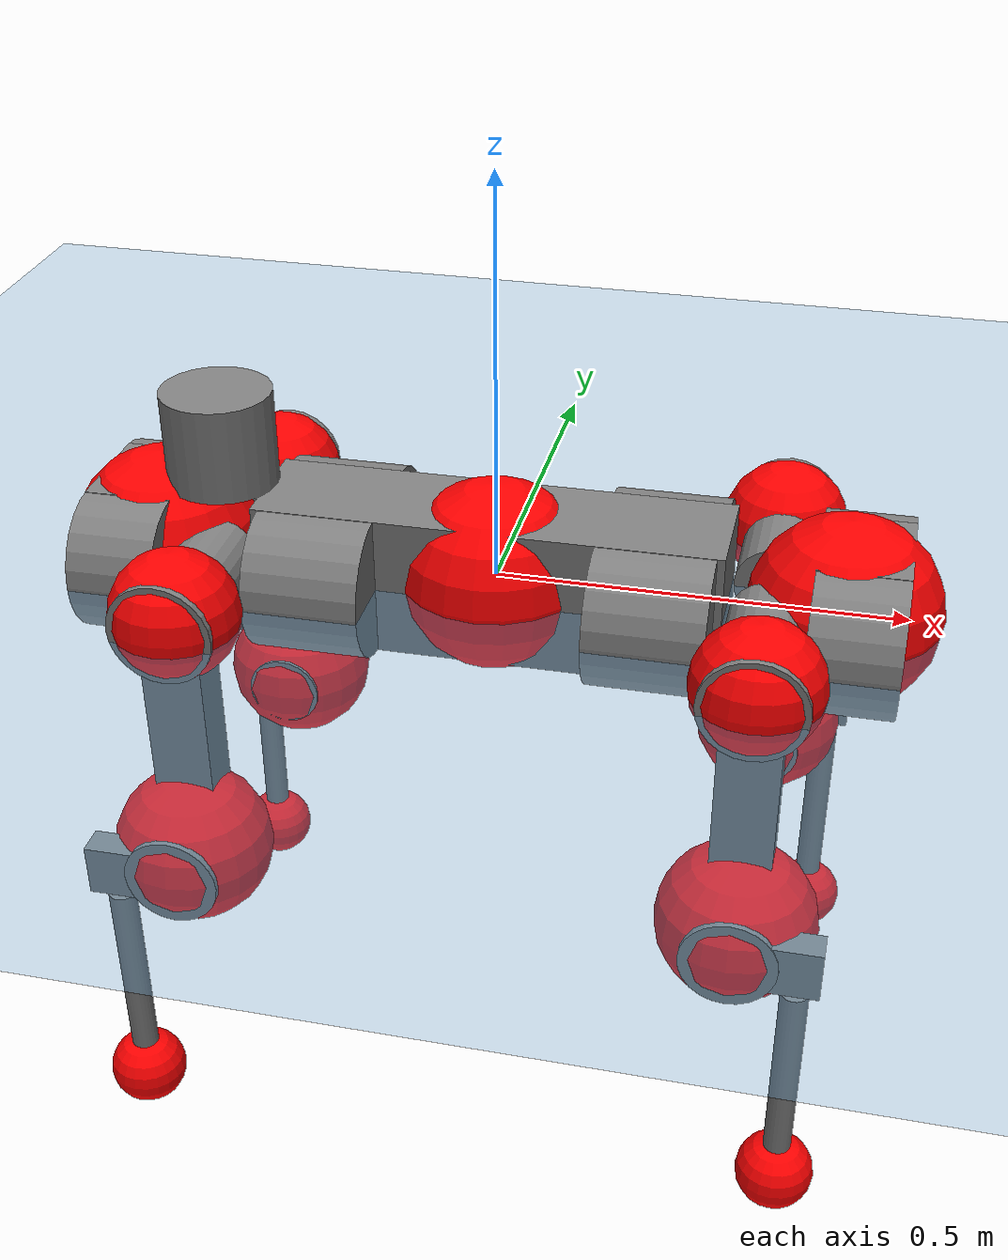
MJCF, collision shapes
<mujoco model="anymal_c">
  <compiler angle="radian" assetdir="assets" balanceinertia="true" inertiafromgeom="false"/>

  <option timestep="0.005" density="1.2" viscosity="2e-05"/>

  <size nkey="1"/>

  <visual>
    <quality shadowsize="8192"/>
    <map shadowclip="0.5"/>
  </visual>

  <default>
    <default class="/">
      <material specular="0" shininess="0.25"/>
      <geom contype="0" conaffinity="0" group="1" solref="-1000 -80"/>
      <site size="0.01 0.005 0.005" group="5"/>
      <general forcelimited="true" forcerange="-80 80" biastype="affine" gainprm="80" biasprm="0 -80 -2"/>
      <default class="anymal_c">
        <joint armature="0.01" damping="0.01" frictionloss="0.1"/>
        <default class="visual">
          <geom type="mesh" group="2"/>
          <default class="visual_zflip"/>
        </default>
        <default class="collision">
          <geom type="cylinder" group="3"/>
          <default class="foot">
            <geom size="0.03 0 0" type="sphere" condim="6" priority="1" friction="0.8 0.02 0.01" solimp="0.015 1 0.03"/>
          </default>
        </default>
      </default>
      <default class="reward_collision_sphere">
        <geom group="5" rgba="1 0 0 1"/>
      </default>
    </default>
  </default>

  <asset>
    <texture type="skybox" colorspace="auto" name="//unnamed_texture_0" builtin="gradient" rgb1="0.95 0.95 0.95" rgb2="0.95 0.95 0.95" width="100" height="600"/>
    <texture type="2d" colorspace="auto" name="texplane" builtin="checker" rgb1="0.345 0.575 0.748" rgb2="0.345 0.575 0.748" markrgb="1 1 1" width="512" height="512"/>
    <texture type="2d" colorspace="linear" name="base" file="base.png"/>
    <texture type="2d" colorspace="linear" name="top_shell" file="top_shell.png"/>
    <texture type="2d" colorspace="linear" name="bottom_shell" file="bottom_shell.png"/>
    <texture type="2d" colorspace="linear" name="remote" file="remote.png"/>
    <texture type="2d" colorspace="linear" name="hatch" file="hatch.png"/>
    <texture type="2d" colorspace="linear" name="handle" file="handle.png"/>
    <texture type="2d" colorspace="linear" name="face" file="face.png"/>
    <texture type="2d" colorspace="linear" name="battery" file="battery.png"/>
    <texture type="2d" colorspace="linear" name="lidar_cage" file="lidar_cage.png"/>
    <texture type="2d" colorspace="linear" name="depth_camera" file="depth_camera.png"/>
    <texture type="2d" colorspace="linear" name="wide_angle_camera" file="wide_angle_camera.png"/>
    <texture type="2d" colorspace="linear" name="lidar" file="lidar.png"/>
    <texture type="2d" colorspace="linear" name="drive" file="drive.png"/>
    <texture type="2d" colorspace="linear" name="hip_l" file="hip_l.png"/>
    <texture type="2d" colorspace="linear" name="shank_l" file="shank_l.png"/>
    <texture type="2d" colorspace="linear" name="foot" file="foot.png"/>
    <texture type="2d" colorspace="linear" name="thigh" file="thigh.png"/>
    <texture type="2d" colorspace="linear" name="shank_r" file="shank_r.png"/>
    <texture type="2d" colorspace="linear" name="hip_r" file="hip_r.png"/>
    <material name="MatPlane" class="/" texture="texplane" texuniform="true" texrepeat="2 2" specular="0.9" shininess="0.5"/>
    <material name="black_plastic" class="/" rgba="0.007 0.007 0.007 1"/>
    <material name="green" class="/" rgba="0.052 0.178 0.033 1"/>
    <material name="red" class="/" rgba="0.178 0.006 0.005 1"/>
    <material name="yellow" class="/" rgba="0.178 0.119 0.006 1"/>
    <material name="lwl" class="/" rgba="0.8 0.8 0.8 1"/>
    <material name="base" class="/" texture="base"/>
    <material name="top_shell" class="/" texture="top_shell"/>
    <material name="bottom_shell" class="/" texture="bottom_shell"/>
    <material name="hip_l" class="/" texture="hip_l"/>
    <material name="thigh" class="/" texture="thigh"/>
    <material name="shank_l" class="/" texture="shank_l"/>
    <material name="foot" class="/" texture="foot"/>
    <material name="hip_r" class="/" texture="hip_r"/>
    <material name="shank" class="/" texture="shank_r"/>
    <material name="hatch" class="/" texture="hatch"/>
    <material name="remote" class="/" texture="remote"/>
    <material name="handle" class="/" texture="handle"/>
    <material name="face" class="/" texture="face"/>
    <material name="depth_camera" class="/" texture="depth_camera"/>
    <material name="wide_angle_camera" class="/" texture="wide_angle_camera"/>
    <material name="battery" class="/" texture="battery"/>
    <material name="lidar_cage" class="/" texture="lidar_cage"/>
    <material name="lidar" class="/" texture="lidar"/>
    <material name="drive" class="/" texture="drive"/>
    <mesh name="base_0" class="/" file="base_0.obj"/>
    <mesh name="base_1" class="/" file="base_1.obj"/>
    <mesh name="base_2" class="/" file="base_2.obj"/>
    <mesh name="base_3" class="/" file="base_3.obj"/>
    <mesh name="base_4" class="/" file="base_4.obj"/>
    <mesh name="base_5" class="/" file="base_5.obj"/>
    <mesh name="top_shell" class="/" file="top_shell.obj"/>
    <mesh name="bottom_shell" class="/" file="bottom_shell.obj"/>
    <mesh name="remote" class="/" file="remote.obj"/>
    <mesh name="handle" class="/" file="handle.obj"/>
    <mesh name="face" class="/" file="face.obj"/>
    <mesh name="wide_angle_camera" class="/" file="wide_angle_camera.obj"/>
    <mesh name="depth_camera" class="/" file="depth_camera.obj"/>
    <mesh name="battery" class="/" file="battery.obj"/>
    <mesh name="lidar_cage" class="/" file="lidar_cage.obj"/>
    <mesh name="lidar" class="/" file="lidar.obj"/>
    <mesh name="drive" class="/" file="drive.obj"/>
    <mesh name="hip_l" class="/" file="hip_l.obj"/>
    <mesh name="thigh" class="/" file="thigh.obj"/>
    <mesh name="shank_l" class="/" file="shank_l.obj"/>
    <mesh name="foot" class="/" file="foot.obj"/>
    <mesh name="hip_r" class="/" file="hip_r.obj"/>
    <mesh name="hatch" class="/" file="hatch.obj"/>
    <mesh name="shank_r" class="/" file="shank_r.obj"/>
  </asset>

  <worldbody>
    <geom name="floor" class="/" size="100 100 0.125" type="plane" group="0" material="MatPlane"/>
    <light name="toplight_shadow" class="/" pos="0 0 5" dir="0.0990148 0.0990148 -0.990148" type="directional" ambient="0.04 0.04 0.04" diffuse="0.55 0.55 0.55" specular="0.12 0.12 0.12"/>
    <light name="toplight_fill" class="/" pos="0 0 5" dir="0.0990148 0.0990148 -0.990148" type="directional" castshadow="false" ambient="0.04 0.04 0.04" diffuse="0.3 0.3 0.3" specular="0.08 0.08 0.08"/>
    <body name="trunk" childclass="anymal_c" pos="-0.00211516 0.000459364 0.00263532" quat="0.999999 -0.000557334 -0.000898506 0.000891513">
      <inertial pos="0.00415882 -0.000455861 0.0522248" quat="0.50329 0.495642 0.495803 0.505192" mass="18.0532" diaginertia="0.471808 0.378573 0.371784"/>
      <joint name="//unnamed_joint_0" type="free" armature="0" damping="0" frictionloss="0"/>
      <geom name="//unnamed_geom_1" class="visual" material="green" mesh="base_0"/>
      <geom name="//unnamed_geom_2" class="visual" material="yellow" mesh="base_1"/>
      <geom name="//unnamed_geom_3" class="visual" material="red" mesh="base_2"/>
      <geom name="//unnamed_geom_4" class="visual" material="black_plastic" mesh="base_3"/>
      <geom name="//unnamed_geom_5" class="visual" material="lwl" mesh="base_4"/>
      <geom name="//unnamed_geom_6" class="visual" material="base" mesh="base_5"/>
      <geom name="trunk_1" class="collision" size="0.286081 0.0690541 0.0887838" type="box"/>
      <geom name="trunk_2" class="collision" size="0.0887838 0.0715203" pos="0.204971 0.0633453 0" quat="0.707107 0 0.707107 0"/>
      <geom name="trunk_3" class="collision" size="0.0887838 0.0715203" pos="-0.204971 0.0633453 0" quat="0.707107 0 0.707107 0"/>
      <geom name="trunk_4" class="collision" size="0.0887838 0.0715203" pos="0.204971 -0.0633453 0" quat="0.707107 0 0.707107 0"/>
      <geom name="trunk_5" class="collision" size="0.0887838 0.0715203" pos="-0.204971 -0.0633453 0" quat="0.707107 0 0.707107 0"/>
      <geom name="//unnamed_geom_12" class="visual" material="top_shell" mesh="top_shell"/>
      <geom name="//unnamed_geom_13" class="visual" material="bottom_shell" mesh="bottom_shell"/>
      <geom name="//unnamed_geom_14" class="visual" material="remote" mesh="remote"/>
      <geom name="//unnamed_geom_15" class="visual" material="handle" mesh="handle"/>
      <geom name="//unnamed_geom_16" class="visual" pos="0.390623 0 0" quat="1 0 0 0" material="face" mesh="face"/>
      <geom name="trunk_6" class="collision" size="0.0542568 0.0690541 0.0887838" pos="0.442454 0 0" type="box"/>
      <geom name="//unnamed_geom_18" class="collision" size="0.0887838 0.0542568" pos="0.442454 0.0633453 0" quat="0.707107 0 0.707107 0"/>
      <geom name="//unnamed_geom_19" class="collision" size="0.0887838 0.0542568" pos="0.442454 -0.0633453 0" quat="0.707107 0 0.707107 0"/>
      <geom name="//unnamed_geom_20" class="visual" pos="0.435064 0 -0.0337642" quat="0.965926 0 0.258819 0" material="depth_camera" mesh="depth_camera"/>
      <geom name="//unnamed_geom_21" class="visual" pos="0.483449 0 0.0166486" material="wide_angle_camera" mesh="wide_angle_camera"/>
      <geom name="//unnamed_geom_22" class="visual_zflip" pos="-0.390623 0 0" quat="0 0 0 1" material="face" mesh="face"/>
      <geom name="trunk_7" class="collision" size="0.0542568 0.0690541 0.0887838" pos="-0.442454 0 0" quat="0 0 0 1" type="box"/>
      <geom name="//unnamed_geom_24" class="collision" size="0.0887838 0.0542568" pos="-0.442454 -0.0633453 0" quat="0 -0.707107 0 0.707107"/>
      <geom name="//unnamed_geom_25" class="collision" size="0.0887838 0.0542568" pos="-0.442454 0.0633453 0" quat="0 -0.707107 0 0.707107"/>
      <geom name="//unnamed_geom_26" class="visual" pos="-0.435064 0 -0.0337642" quat="0 -0.258819 0 0.965926" material="depth_camera" mesh="depth_camera"/>
      <geom name="//unnamed_geom_27" class="visual_zflip" pos="-0.483449 0 0.0166486" quat="0 0 0 1" material="wide_angle_camera" mesh="wide_angle_camera"/>
      <geom name="//unnamed_geom_28" class="visual" material="battery" mesh="battery"/>
      <geom name="//unnamed_geom_29" class="visual" pos="0 0.0687066 0.0310174" quat="0.683013 -0.183013 0.183013 0.683013" material="depth_camera" mesh="depth_camera"/>
      <geom name="//unnamed_geom_30" class="visual" pos="0 -0.0687066 0.0310174" quat="0.683013 0.183013 0.183013 -0.683013" material="depth_camera" mesh="depth_camera"/>
      <geom name="//unnamed_geom_31" class="visual" pos="-0.343032 0 0.0817417" quat="1 0 0 0" material="lidar_cage" mesh="lidar_cage"/>
      <geom name="trunk_8" class="collision" size="0.0690541 0.0591892" pos="-0.343032 0 0.14847"/>
      <geom name="//unnamed_geom_33" class="visual" pos="-0.343032 -1.47178e-05 0.158145" quat="0.707107 0 0 -0.707107" material="lidar" mesh="lidar"/>
      <geom name="//unnamed_geom_34" class="visual" pos="0.282624 0.0941866 -3.5742e-09" quat="0.258819 0.965926 0 0" material="drive" mesh="drive"/>
      <geom name="//unnamed_geom_35" class="visual" pos="0.282624 -0.0941866 3.5742e-09" quat="0.258819 -0.965926 0 0" material="drive" mesh="drive"/>
      <geom name="//unnamed_geom_36" class="visual" pos="-0.282624 0.0941866 3.5742e-09" quat="0 0 0.965926 -0.258819" material="drive" mesh="drive"/>
      <geom name="//unnamed_geom_37" class="visual" pos="-0.282624 -0.0941866 -3.5742e-09" quat="0 0 -0.965926 -0.258819" material="drive" mesh="drive"/>
      <geom name="//unnamed_geom_38" class="visual" pos="0.109318 0 0.0811856" quat="1 0 0 0" material="hatch" mesh="hatch"/>
      <geom name="//unnamed_geom_39" class="reward_collision_sphere" size="0.118378"/>
      <geom name="//unnamed_geom_40" class="reward_collision_sphere" size="0.118378" pos="0.424078 0 0"/>
      <geom name="//unnamed_geom_41" class="reward_collision_sphere" size="0.118378" pos="-0.424078 0 0"/>
      <site name="imu" pos="0.232897 0.00900889 0.0528358" size="0.00986486"/>
      <camera name="track" pos="0 -1.80987 0" quat="0.707107 0.707107 0 0" mode="trackcom"/>
      <camera name="ego_camera" pos="0.424078 0 -0.0444853" quat="-0.5 -0.5 0.5 0.5"/>
      <body name="LF_HIP" pos="0.281387 0.0927821 -0.00129532" quat="0.258736 0.965948 0.000265575 5.34117e-05">
        <inertial pos="0.0536148 -0.0152028 -0.00871837" quat="-0.127213 0.709175 -0.135625 0.680069" mass="2.82171" diaginertia="0.00441246 0.00301145 0.00575938"/>
        <joint name="LF_HAA" pos="0 0 0" axis="0.999999 0.000635638 -0.000914521" range="-0.715745 0.544405" armature="0.00940738" damping="0.0217327" frictionloss="0.0882807"/>
        <geom name="//unnamed_geom_42" class="visual" pos="0 -0.000210254 3.4534e-05" quat="0.258819 -0.965926 0 0" material="hip_l" mesh="hip_l"/>
        <geom name="//unnamed_geom_43" class="visual" pos="0.0564495 -0.0679809 -0.0407813" quat="0.183013 -0.683013 0.683013 0.183013" material="drive" mesh="drive"/>
        <geom name="//unnamed_geom_44" class="collision" size="0.0493243 0.0690541" pos="0.0564495 -0.0108228 -0.00767927" quat="-0.353553 -0.612372 0.612372 -0.353553"/>
        <body name="LF_THIGH" pos="0.054148 -0.0660578 -0.0450305" quat="0.183079 -0.683036 0.682967 0.183033">
          <inertial pos="0.0284003 0.00022177 -0.27061" quat="0.99347 -0.0097733 -0.0814857 0.0792543" mass="2.8873" diaginertia="0.0224827 0.0184911 0.00735906"/>
          <joint name="LF_HFE" pos="0 0 0" axis="0.999982 -0.00156047 0.00579257" stiffness="0.00194404" range="-3.13271 3.18188" armature="0.00880628" damping="0.0142883" frictionloss="0.0861625"/>
          <geom name="//unnamed_geom_45" class="visual" pos="0.000745346 1.17449e-06 0" quat="0.707107 0 0 -0.707107" material="thigh" mesh="thigh"/>
          <geom name="//unnamed_geom_46" class="collision" size="0.0641216 0.0394595" pos="0.0376958 0 0" quat="0.5 0.5 -0.5 -0.5"/>
          <geom name="//unnamed_geom_47" class="collision" size="0.0369932 0.0295946 0.139404" pos="0.0282718 0 -0.15716" quat="0.707107 0 0 -0.707107" type="box"/>
          <geom name="//unnamed_geom_48" class="visual" pos="0.0945222 0 -0.316958" quat="1 0 0 0" material="drive" mesh="drive"/>
          <geom name="//unnamed_geom_49" class="collision" size="0.0493243 0.0690541" pos="0.0285546 0 -0.316958" quat="0.707107 0 0.707107 0"/>
          <geom name="//unnamed_geom_50" class="reward_collision_sphere" size="0.0789189" pos="0.0235599 0 0"/>
          <body name="LF_SHANK" pos="0.0932961 0.000470665 -0.315838" quat="0.999999 0.00102398 6.3917e-05 0.000103085">
            <inertial pos="0.00529479 -0.0536783 -0.092469" quat="0.993232 -0.112748 -0.0027377 -0.0277776" mass="0.555449" diaginertia="0.0073592 0.00551543 0.00191358"/>
            <joint name="LF_KFE" pos="0 0 0" axis="0.999997 -0.00215373 0.00101482" range="-3.09668 3.12927" armature="0.0110714" damping="0.00801208" frictionloss="0.0949866"/>
            <geom name="//unnamed_geom_51" class="visual" pos="0.000243041 0.00129591 0" quat="0.707107 0 0 -0.707107" material="shank_l" mesh="shank_l"/>
            <geom name="LF_kfe_act" class="collision" size="0.0591892 0.0197297" pos="0.0188479 0 0" quat="0.5 0.5 -0.5 -0.5"/>
            <geom name="//unnamed_geom_53" class="collision" size="0.056722 0.0332939 0.0187432" pos="0.0188479 -0.0520327 0" quat="0.5 0.5 -0.5 -0.5" type="box"/>
            <geom name="//unnamed_geom_54" class="visual" pos="0.0122982 -0.0791712 -0.375867" quat="0.382683 0 0 -0.92388" material="foot" mesh="foot"/>
            <geom name="LF_calf" class="collision" size="0.0172635 0.139343" pos="0.0122983 -0.0795889 -0.187934" quat="0.707107 0 0 -0.707107"/>
            <geom name="LF_foot" class="foot" size="0.0297754" pos="0.0122983 -0.0795889 -0.350844" quat="0.707107 0 0 -0.707107"/>
            <geom name="//unnamed_geom_57" class="reward_collision_sphere" size="0.0986486" pos="-0.0471197 0 0"/>
            <geom name="//unnamed_geom_58" class="reward_collision_sphere" size="0.0493243" pos="0.0122983 -0.0795889 -0.350844"/>
            <site name="LF_foot" class="foot" pos="0.0122983 -0.0795889 -0.350844" quat="0.707107 0 0 -0.707107" size="0.00986486"/>
          </body>
        </body>
      </body>
      <body name="RF_HIP" pos="0.283298 -0.0944118 -0.00197863" quat="0.25881 -0.965928 0.000237975 -0.000124072">
        <inertial pos="0.0512119 0.0159365 -0.0114221" quat="0.140613 0.677166 0.126897 0.711035" mass="2.71879" diaginertia="0.00434383 0.00301687 0.00556007"/>
        <joint name="RF_HAA" pos="0 0 0" axis="0.999988 0.00468468 -0.00123177" range="-0.476183 0.711657" armature="0.00968845" damping="0.00343309" frictionloss="0.111913"/>
        <geom name="//unnamed_geom_59" class="visual" pos="0 0.000210252 3.4534e-05" quat="0.258819 0.965926 0 0" material="hip_r" mesh="hip_r"/>
        <geom name="//unnamed_geom_60" class="visual" pos="0.0564495 0.0679809 -0.0407813" quat="0.183013 0.683013 0.683013 -0.183013" material="drive" mesh="drive"/>
        <geom name="//unnamed_geom_61" class="collision" size="0.0493243 0.0690541" pos="0.0564495 0.0108228 -0.00767927" quat="-0.353553 0.612372 0.612372 0.353553"/>
        <body name="RF_THIGH" pos="0.0592395 0.0630998 -0.0471499" quat="0.182997 0.683094 0.682881 -0.183219">
          <inertial pos="0.0286733 -0.00255852 -0.27565" quat="0.992648 0.00388077 -0.0750599 0.094872" mass="2.94437" diaginertia="0.0214677 0.0176298 0.00696456"/>
          <joint name="RF_HFE" pos="0 0 0" axis="1 0.000601013 0.00014623" range="-3.09136 3.11375" armature="0.00888616" damping="0.0103499" frictionloss="0.112296"/>
          <geom name="//unnamed_geom_62" class="visual" pos="0.000745346 1.17449e-06 0" quat="0.707107 0 0 -0.707107" material="thigh" mesh="thigh"/>
          <geom name="//unnamed_geom_63" class="collision" size="0.0641216 0.0394595" pos="0.0376958 0 0" quat="0.5 0.5 0.5 0.5"/>
          <geom name="//unnamed_geom_64" class="collision" size="0.0369932 0.0295946 0.139404" pos="0.0282718 0 -0.15716" quat="0.707107 0 0 0.707107" type="box"/>
          <geom name="//unnamed_geom_65" class="visual" pos="0.0945222 0 -0.316958" quat="1 0 0 0" material="drive" mesh="drive"/>
          <geom name="//unnamed_geom_66" class="collision" size="0.0493243 0.0690541" pos="0.0285546 0 -0.316958" quat="0.707107 0 0.707107 0"/>
          <geom name="//unnamed_geom_67" class="reward_collision_sphere" size="0.0789189" pos="0.0235599 0 0"/>
          <body name="RF_SHANK" pos="0.0916372 0.00023145 -0.317849" quat="0.999999 -0.000343657 -0.000937446 -0.000778548">
            <inertial pos="0.00380334 0.0554599 -0.0897471" quat="0.992854 0.117535 5.41627e-05 0.0206604" mass="0.59196" diaginertia="0.00794407 0.00550199 0.00193695"/>
            <joint name="RF_KFE" pos="0 0 0" axis="0.999942 0.003337 0.0102526" stiffness="0.00140977" range="-3.12985 3.08952" armature="0.0105222" damping="0.00556406" frictionloss="0.112298"/>
            <geom name="//unnamed_geom_68" class="visual" pos="0.00024304 -0.0012959 0" quat="0.707107 0 0 0.707107" material="shank" mesh="shank_r"/>
            <geom name="RF_kfe_act" class="collision" size="0.0591892 0.0197297" pos="0.0188479 0 0" quat="0.5 0.5 0.5 0.5"/>
            <geom name="//unnamed_geom_70" class="collision" size="0.056722 0.0332939 0.0187432" pos="0.0188479 0.0520327 0" quat="0.5 0.5 0.5 0.5" type="box"/>
            <geom name="//unnamed_geom_71" class="visual" pos="0.0122983 0.0791712 -0.375867" quat="0.382683 0 0 0.92388" material="foot" mesh="foot"/>
            <geom name="RF_calf" class="collision" size="0.0172635 0.139343" pos="0.0122983 0.0795889 -0.187934" quat="0.707107 0 0 0.707107"/>
            <geom name="RF_foot" class="foot" size="0.0280741" pos="0.0122983 0.0795889 -0.350844" quat="0.707107 0 0 0.707107"/>
            <geom name="//unnamed_geom_74" class="reward_collision_sphere" size="0.0986486" pos="-0.0471197 0 0"/>
            <geom name="//unnamed_geom_75" class="reward_collision_sphere" size="0.0493243" pos="0.0122983 0.0795889 -0.350844"/>
            <site name="RF_foot" class="foot" pos="0.0122983 0.0795889 -0.350844" quat="0.707107 0 0 0.707107" size="0.00986486"/>
          </body>
        </body>
      </body>
      <body name="LH_HIP" pos="-0.282089 0.0926965 -0.000393136" quat="-0.000661608 0.000175816 0.965883 -0.25898">
        <inertial pos="0.0536997 0.0156941 -0.00840733" quat="0.140358 0.677473 0.125447 0.71105" mass="2.65838" diaginertia="0.00421165 0.00289889 0.00537408"/>
        <joint name="LH_HAA" pos="0 0 0" axis="0.999981 0.000254175 0.00608961" range="-0.476969 0.777065" armature="0.00989596" damping="0.00952537" frictionloss="0.100037"/>
        <geom name="//unnamed_geom_76" class="visual" pos="0 0.000210252 3.4534e-05" quat="-0.258819 -0.965926 0 0" material="hip_r" mesh="hip_r"/>
        <geom name="//unnamed_geom_77" class="visual" pos="0.0564495 0.0679809 -0.0407813" quat="0.183013 0.683013 0.683013 -0.183013" material="drive" mesh="drive"/>
        <geom name="//unnamed_geom_78" class="collision" size="0.0493243 0.0690541" pos="0.0564495 0.0108228 -0.00767927" quat="-0.353553 0.612372 0.612372 0.353553"/>
        <body name="LH_THIGH" pos="0.0564099 0.0638876 -0.0440987" quat="0.182993 0.682964 0.682789 -0.184045">
          <inertial pos="0.0308617 0.00246151 -0.272332" quat="0.993088 -0.00474946 -0.0786363 0.0870056" mass="2.7785" diaginertia="0.0223304 0.0181326 0.00718457"/>
          <joint name="LH_HFE" pos="0 0 0" axis="0.999998 0.00123433 -0.0013456" range="-3.19559 3.09692" armature="0.0105778" damping="0" frictionloss="0.0965604"/>
          <geom name="//unnamed_geom_79" class="visual" pos="0.000745346 1.17449e-06 0" quat="0.707107 0 0 -0.707107" material="thigh" mesh="thigh"/>
          <geom name="//unnamed_geom_80" class="collision" size="0.0641216 0.0394595" pos="0.0376958 0 0" quat="0.5 0.5 -0.5 -0.5"/>
          <geom name="//unnamed_geom_81" class="collision" size="0.0369932 0.0295946 0.139404" pos="0.0282718 0 -0.15716" quat="0.707107 0 0 -0.707107" type="box"/>
          <geom name="//unnamed_geom_82" class="visual" pos="0.0945222 0 -0.316958" quat="1 0 0 0" material="drive" mesh="drive"/>
          <geom name="//unnamed_geom_83" class="collision" size="0.0493243 0.0690541" pos="0.0285546 0 -0.316958" quat="0.707107 0 0.707107 0"/>
          <geom name="//unnamed_geom_84" class="reward_collision_sphere" size="0.0789189" pos="0.0235599 0 0"/>
          <body name="LH_SHANK" pos="0.0925071 0.00211768 -0.320543" quat="1 -1.91118e-06 -5.29538e-05 -6.99982e-05">
            <inertial pos="0.00785353 0.0557554 -0.0921856" quat="0.993203 0.114947 0.00671179 0.0170092" mass="0.549201" diaginertia="0.00718243 0.00550742 0.00191513"/>
            <joint name="LH_KFE" pos="0 0 0" axis="0.999994 0.00341697 0.000773874" stiffness="0.00775852" range="-3.12938 3.10024" armature="0.00967553" damping="0.00640423" frictionloss="0.0940375"/>
            <geom name="//unnamed_geom_85" class="visual" pos="0.00024304 -0.0012959 0" quat="-0.707107 0 0 -0.707107" material="shank" mesh="shank_r"/>
            <geom name="LH_kfe_act" class="collision" size="0.0591892 0.0197297" pos="0.0188479 0 0" quat="0.5 0.5 -0.5 -0.5"/>
            <geom name="//unnamed_geom_87" class="collision" size="0.056722 0.0332939 0.0187432" pos="0.0188479 0.0520327 0" quat="0.5 0.5 -0.5 -0.5" type="box"/>
            <geom name="//unnamed_geom_88" class="visual" pos="0.0122983 0.0791712 -0.375867" quat="-0.382683 0 0 -0.92388" material="foot" mesh="foot"/>
            <geom name="LH_calf" class="collision" size="0.0172635 0.139343" pos="0.0122983 0.0795889 -0.187934" quat="0.707107 0 0 -0.707107"/>
            <geom name="LH_foot" class="foot" size="0.0346584" pos="0.0122983 0.0795889 -0.350844" quat="0.707107 0 0 -0.707107"/>
            <geom name="//unnamed_geom_91" class="reward_collision_sphere" size="0.0986486" pos="-0.0471197 0 0"/>
            <geom name="//unnamed_geom_92" class="reward_collision_sphere" size="0.0493243" pos="0.0122983 0.0795889 -0.350844"/>
            <site name="LH_foot" class="foot" pos="0.0122983 0.0795889 -0.350844" quat="0.707107 0 0 -0.707107" size="0.00986486"/>
          </body>
        </body>
      </body>
      <body name="RH_HIP" pos="-0.284391 -0.0939751 0.00274967" quat="1.47557e-05 6.35731e-06 -0.965924 -0.258824">
        <inertial pos="0.0509628 -0.0113229 -0.00850353" quat="-0.120152 0.707503 -0.141318 0.681933" mass="2.7527" diaginertia="0.00446442 0.00301524 0.00567795"/>
        <joint name="RH_HAA" pos="0 0 0" axis="1 0.000278769 -0.000308828" range="-0.724822 0.545354" armature="0.00845832" damping="0" frictionloss="0.099996"/>
        <geom name="//unnamed_geom_93" class="visual" pos="0 -0.000210254 3.4534e-05" quat="-0.258819 0.965926 0 0" material="hip_l" mesh="hip_l"/>
        <geom name="//unnamed_geom_94" class="visual" pos="0.0564495 -0.0679809 -0.0407813" quat="-0.183013 0.683013 -0.683013 -0.183013" material="drive" mesh="drive"/>
        <geom name="//unnamed_geom_95" class="collision" size="0.0493243 0.0690541" pos="0.0564495 -0.0108228 -0.00767927" quat="0.353553 0.612372 -0.612372 0.353553"/>
        <body name="RH_THIGH" pos="0.0554105 -0.0630662 -0.0462973" quat="-0.183155 0.682725 -0.683226 -0.183146">
          <inertial pos="0.0283832 0.0024031 -0.271094" quat="0.993208 -0.00313139 -0.0795564 0.084848" mass="2.80745" diaginertia="0.0214274 0.0176946 0.00687383"/>
          <joint name="RH_HFE" pos="0 0 0" axis="0.99997 -0.00182601 -0.00756268" range="-3.09249 3.09965" armature="0.00927707" damping="0.0198021" frictionloss="0.0983025"/>
          <geom name="//unnamed_geom_96" class="visual" pos="0.000745346 1.17449e-06 0" quat="0.707107 0 0 -0.707107" material="thigh" mesh="thigh"/>
          <geom name="//unnamed_geom_97" class="collision" size="0.0641216 0.0394595" pos="0.0376958 0 0" quat="0.5 0.5 0.5 0.5"/>
          <geom name="//unnamed_geom_98" class="collision" size="0.0369932 0.0295946 0.139404" pos="0.0282718 0 -0.15716" quat="0.707107 0 0 0.707107" type="box"/>
          <geom name="//unnamed_geom_99" class="visual" pos="0.0945222 0 -0.316958" quat="1 0 0 0" material="drive" mesh="drive"/>
          <geom name="//unnamed_geom_100" class="collision" size="0.0493243 0.0690541" pos="0.0285546 0 -0.316958" quat="0.707107 0 0.707107 0"/>
          <geom name="//unnamed_geom_101" class="reward_collision_sphere" size="0.0789189" pos="0.0235599 0 0"/>
          <body name="RH_SHANK" pos="0.0953654 0.000919659 -0.31924" quat="1 0.000134605 1.7361e-05 -1.00992e-05">
            <inertial pos="0.00626303 -0.0580839 -0.0875261" quat="0.992144 -0.121709 0.00127293 -0.0289147" mass="0.557127" diaginertia="0.00738236 0.00559819 0.00185019"/>
            <joint name="RH_KFE" pos="0 0 0" axis="0.999895 -0.0128364 -0.00668747" stiffness="0.000828265" range="-3.12705 3.13881" armature="0.00982578" damping="0.00616489" frictionloss="0.112295"/>
            <geom name="//unnamed_geom_102" class="visual" pos="0.000243041 0.00129591 0" quat="0.707107 0 0 -0.707107" material="shank_l" mesh="shank_l"/>
            <geom name="RH_kfe_act" class="collision" size="0.0591892 0.0197297" pos="0.0188479 0 0" quat="0.5 0.5 0.5 0.5"/>
            <geom name="//unnamed_geom_104" class="collision" size="0.056722 0.0332939 0.0187432" pos="0.0188479 -0.0520327 0" quat="0.5 0.5 0.5 0.5" type="box"/>
            <geom name="//unnamed_geom_105" class="visual" pos="0.0122982 -0.0791712 -0.375867" quat="0.382683 0 0 -0.92388" material="foot" mesh="foot"/>
            <geom name="RH_calf" class="collision" size="0.0172635 0.139343" pos="0.0122983 -0.0795889 -0.187934" quat="0.707107 0 0 0.707107"/>
            <geom name="RH_foot" class="foot" size="0.02653" pos="0.0122983 -0.0795889 -0.350844" quat="0.707107 0 0 0.707107"/>
            <geom name="//unnamed_geom_108" class="reward_collision_sphere" size="0.0986486" pos="-0.0471197 0 0"/>
            <geom name="//unnamed_geom_109" class="reward_collision_sphere" size="0.0493243" pos="0.0122983 -0.0795889 -0.350844"/>
            <site name="RH_foot" class="foot" pos="0.0122983 -0.0795889 -0.350844" quat="0.707107 0 0 0.707107" size="0.00986486"/>
          </body>
        </body>
      </body>
    </body>
  </worldbody>

  <contact>
    <pair class="/" geom1="floor" geom2="LF_foot" name="//unnamed_contact_0"/>
    <pair class="/" geom1="floor" geom2="RF_foot" name="//unnamed_contact_1"/>
    <pair class="/" geom1="floor" geom2="LH_foot" name="//unnamed_contact_2"/>
    <pair class="/" geom1="floor" geom2="RH_foot" name="//unnamed_contact_3"/>
  </contact>

  <actuator>
    <general name="LF_HAA" class="/" joint="LF_HAA" forcerange="-75.0958 75.0958" gainprm="73.7764" biasprm="0 -73.7764 -1.86446"/>
    <general name="LF_HFE" class="/" joint="LF_HFE" forcerange="-80.9247 80.9247" gainprm="73.7764" biasprm="0 -73.7764 -1.86446"/>
    <general name="LF_KFE" class="/" joint="LF_KFE" forcerange="-71.8336 71.8336" gainprm="73.7764" biasprm="0 -73.7764 -1.86446"/>
    <general name="RF_HAA" class="/" joint="RF_HAA" forcerange="-76.7108 76.7108" gainprm="73.7764" biasprm="0 -73.7764 -1.86446"/>
    <general name="RF_HFE" class="/" joint="RF_HFE" forcerange="-85.1961 85.1961" gainprm="73.7764" biasprm="0 -73.7764 -1.86446"/>
    <general name="RF_KFE" class="/" joint="RF_KFE" forcerange="-75.0056 75.0056" gainprm="73.7764" biasprm="0 -73.7764 -1.86446"/>
    <general name="LH_HAA" class="/" joint="LH_HAA" forcerange="-78.0046 78.0046" gainprm="73.7764" biasprm="0 -73.7764 -1.86446"/>
    <general name="LH_HFE" class="/" joint="LH_HFE" forcerange="-74.1659 74.1659" gainprm="73.7764" biasprm="0 -73.7764 -1.86446"/>
    <general name="LH_KFE" class="/" joint="LH_KFE" forcerange="-88.337 88.337" gainprm="73.7764" biasprm="0 -73.7764 -1.86446"/>
    <general name="RH_HAA" class="/" joint="RH_HAA" forcerange="-79.3702 79.3702" gainprm="73.7764" biasprm="0 -73.7764 -1.86446"/>
    <general name="RH_HFE" class="/" joint="RH_HFE" forcerange="-80.8164 80.8164" gainprm="73.7764" biasprm="0 -73.7764 -1.86446"/>
    <general name="RH_KFE" class="/" joint="RH_KFE" forcerange="-84.5316 84.5316" gainprm="73.7764" biasprm="0 -73.7764 -1.86446"/>
  </actuator>

  <sensor>
    <gyro site="imu" name="imu_angular_velocity"/>
    <velocimeter site="imu" name="imu_linear_velocity"/>
    <framelinvel objtype="site" objname="LF_foot" name="LF_foot_global_linear_velocity"/>
    <framelinvel objtype="site" objname="RF_foot" name="RF_foot_global_linear_velocity"/>
    <framelinvel objtype="site" objname="LH_foot" name="LH_foot_global_linear_velocity"/>
    <framelinvel objtype="site" objname="RH_foot" name="RH_foot_global_linear_velocity"/>
  </sensor>

  <keyframe>
    <key name="home" qpos="0 0 0.55 1 0 0 0 0 0.4 -0.8 0 -0.4 0.8 0 -0.4 0.8 0 0.4 -0.8"/>
  </keyframe>
</mujoco>
